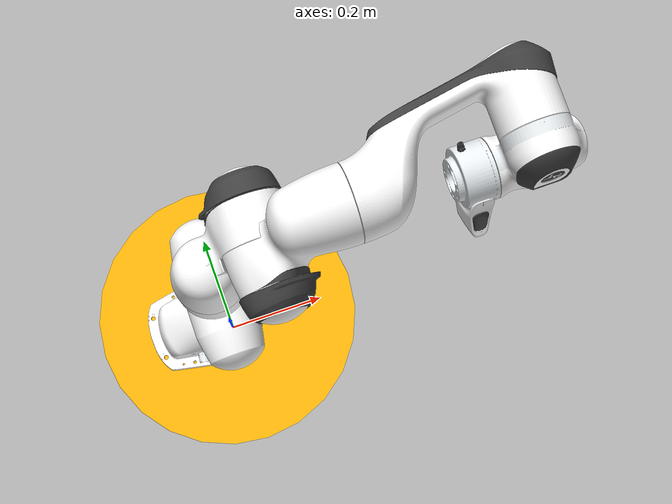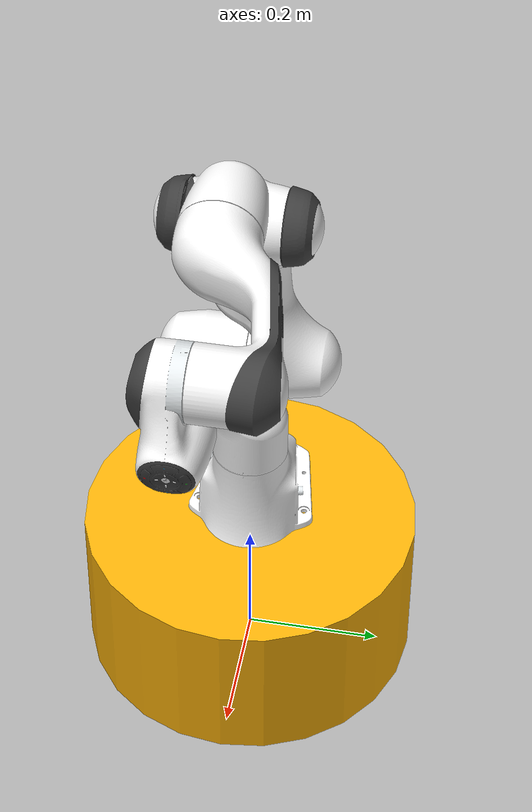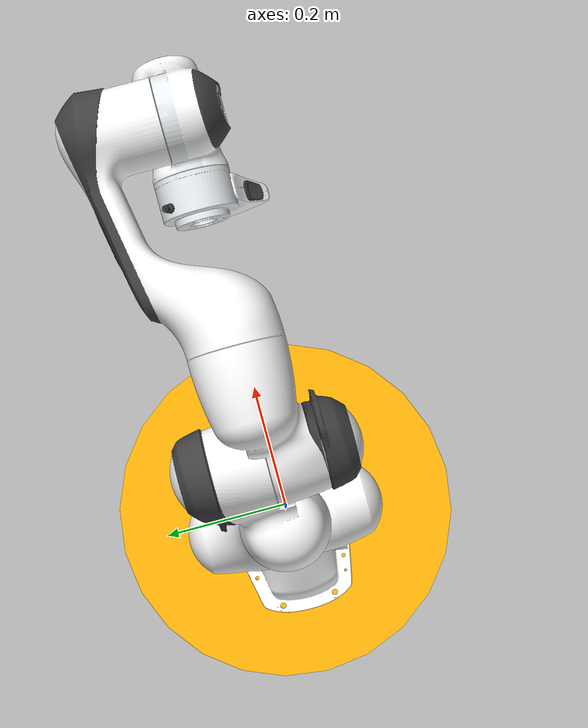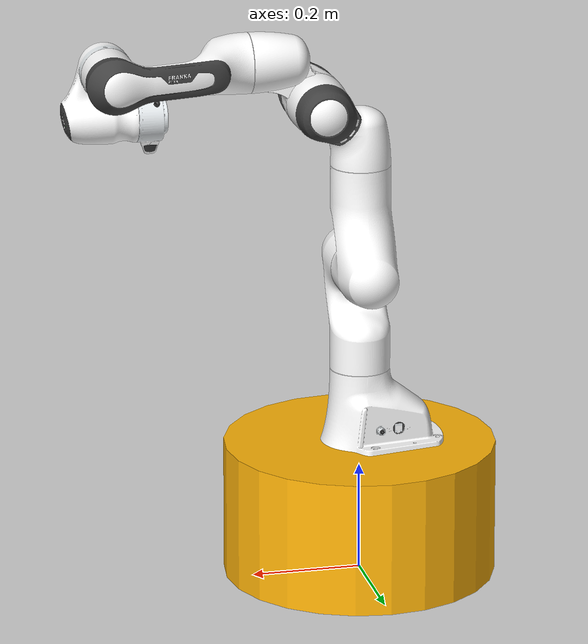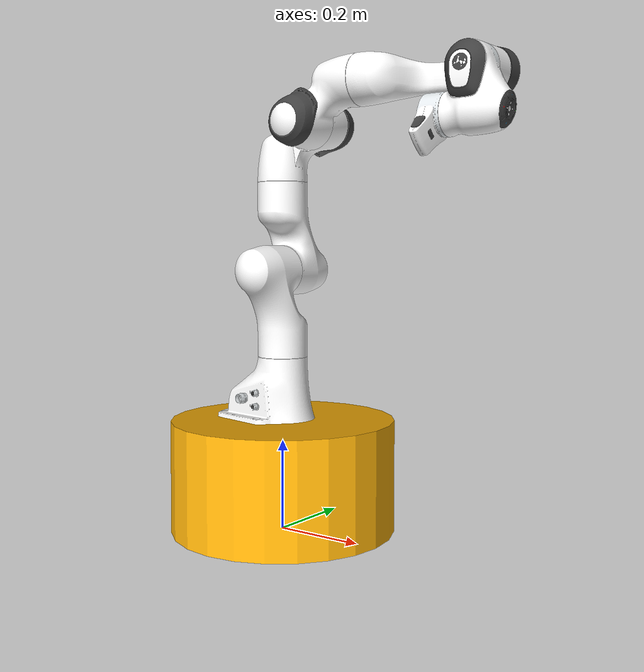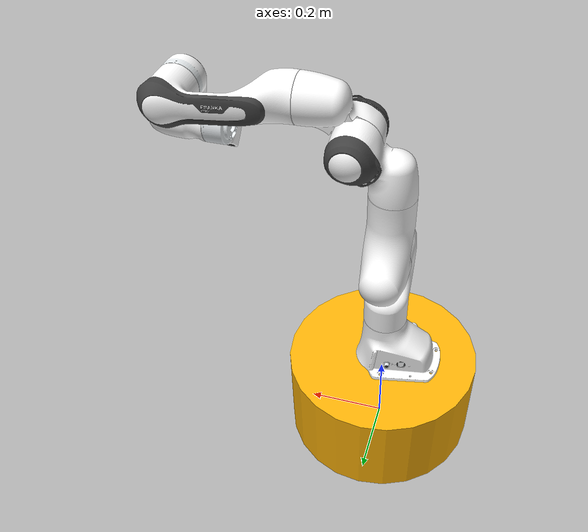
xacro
<?xml version="1.0" encoding="utf-8"?>
<robot xmlns:xacro="http://www.ros.org/wiki/xacro" name="panda">

  <!-- Include ros2_control definitions (must come before args) -->
  <xacro:include filename="$(find panda_description)/robots/ros2_control/panda_arm.ros2_control.xacro"/>

  <!-- Launch-time arguments ──────────────────────────────────────────────── -->
  <xacro:arg name="arm_id"                         default="panda"/>
  <xacro:arg name="hand"                           default="false"/>
  <xacro:arg name="robot_ip"                       default=""/>
  <xacro:arg name="use_fake_hardware"              default="false"/>
  <xacro:arg name="fake_sensor_commands"           default="false"/>
  <xacro:arg name="use_sim_time"                   default="false"/>
  <!-- path to your controllers YAML (if not overridden) -->
  <xacro:arg name="simulation_controllers_config_file"
             default="$(find panda_gazebo)/config/gazebo_panda_controllers.yaml"/>
  <!-- feed-forward gains -->
  <xacro:arg name="ff_vel"                          default="1.0"/>
  <xacro:arg name="ff_accel"                        default="0.2"/>

  <!-- World → base frame ─────────────────────────────────────────────────── -->
  <link name="world"/>
  <joint name="fixed_frame" type="fixed">
    <origin xyz="0 0 0.125" rpy="0 0 0"/>
    <parent link="world"/>
    <child  link="cylinder_base"/>
  </joint>

  <!-- Base pedestal ───────────────────────────────────────────────────────── -->
<link name="cylinder_base">
  <visual>
    <origin xyz="0 0 0" rpy="0 0 0"/>
    <geometry>
      <cylinder radius="0.25" length="0.25"/>
    </geometry>
    <material name="amber">
      <color rgba="0.996 0.702 0.031 1.0"/>
    </material>
  </visual>
  <collision>
    <origin xyz="0 0 0" rpy="0 0 0"/>
    <geometry>
      <cylinder radius="0.25" length="0.25"/>
    </geometry>
  </collision>
  <inertial>
    <mass value="10"/>
    <inertia
      ixx="0.3646" ixy="0" ixz="0"
      iyy="0.3646" iyz="0"
      izz="0.3125"/>
  </inertial>
</link>

  <!-- Panda arm kinematics & visuals ──────────────────────────────────────── -->
  <xacro:include filename="$(find panda_description)/robots/panda_arm.xacro"/>
  <xacro:panda_arm
      arm_id="$(arg arm_id)"
      connected_to="cylinder_base"
      xyz="0 0 0.125"
      safety_distance="0.03"
      use_sim_time="$(arg use_sim_time)"/>

  <!-- Optional hand (gripper) ────────────────────────────────────────────── -->
  <xacro:if value="$(arg hand)">
    <xacro:include filename="$(find panda_description)/robots/hand.xacro"/>
    <xacro:hand
        ns="$(arg arm_id)"
        connected_to="$(arg arm_id)_link8"
        rpy="0 0 ${-pi/4}"
        xyz="0 0 0"
        safety_distance="0.03"
        use_sim_time="$(arg use_sim_time)"
        simulation_controllers_config_file="$(arg simulation_controllers_config_file)"/>
  </xacro:if>

  <!-- Arm ros2_control + feed-forward instantiation ───────────────────────── -->
  <xacro:panda_arm_ros2_control
      ns="$(arg arm_id)"
      use_sim_time="$(arg use_sim_time)"
      load_gripper="$(arg hand)"
      simulation_controllers_config_file="$(arg simulation_controllers_config_file)"
      ff_vel="$(arg ff_vel)"
      ff_accel="$(arg ff_accel)"/>

  <!-- Gazebo joint-trajectory-controller plugin (if still needed) ─────────── -->
  <plugin filename="libgz-sim-joint-trajectory-controller-system.so"
          name="gz::sim::systems::JointTrajectoryController">
    <!-- list each of your 7 joints -->
    <joint_name>panda_joint1</joint_name>
    <joint_name>panda_joint2</joint_name>
    <joint_name>panda_joint3</joint_name>
    <joint_name>panda_joint4</joint_name>
    <joint_name>panda_joint5</joint_name>
    <joint_name>panda_joint6</joint_name>
    <joint_name>panda_joint7</joint_name>

    <!-- per-joint P gains (example values) -->
    <position_p_gain>100</position_p_gain>
    <position_p_gain>100</position_p_gain>
    <position_p_gain>100</position_p_gain>
    <position_p_gain>100</position_p_gain>
    <position_p_gain>100</position_p_gain>
    <position_p_gain>100</position_p_gain>
    <position_p_gain>100</position_p_gain>
  </plugin>

</robot>

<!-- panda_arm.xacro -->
<robot xmlns:xacro="http://www.ros.org/wiki/xacro" name="panda">
  <!-- safety_distance: Minimum safety distance in [m] by which the collision volumes are expanded
  and which is enforced during robot motions -->
  <!-- arm_id: Namespace of the panda arm. Serves to differentiate between arms in case of multiple
  instances. -->
  <!-- Load inertial properties. Property is implicitly passed to macros. -->
  <xacro:property name="inertial_config"
    value="$(find panda_description)/robots/common/inertial.yaml" />
  <xacro:property name="inertial" value="${xacro.load_yaml(inertial_config)}" />

  <!-- name:     Name of the robot link (without prefix)              -->
  <!-- inertial: Dictionary of inertia properties (see inertial.yaml) -->
  <xacro:macro name="inertial_props" params="name inertial:=^">
    <xacro:unless value="${name in inertial}">${xacro.warning('No inertia properties defined for: '
      + name)}</xacro:unless>
    <xacro:if value="${name in inertial}">
      <!-- Access inertia properties of link 'name' -->
      <xacro:property name="inertial" value="${inertial[name]}" lazy_eval="false" />
      <inertial>
        <origin rpy="${inertial.origin.rpy}" xyz="${inertial.origin.xyz}" />
        <mass value="${inertial.mass}" />
        <xacro:property name="I" value="${inertial.inertia}" />
        <inertia ixx="${I.xx}" ixy="${I.xy}" ixz="${I.xz}" iyy="${I.yy}" iyz="${I.yz}" izz="${I.zz}" />
      </inertial>
    </xacro:if>
  </xacro:macro>

  <xacro:macro name="panda_arm"
    params="arm_id:='panda' use_sim_time:='false' description_pkg:='panda_description' connected_to:='' xyz:='0 0 0' rpy:='0 0 0' safety_distance:=0">
    <xacro:unless value="${not connected_to}">
      <joint name="${arm_id}_joint_${connected_to}" type="fixed">
        <parent link="${connected_to}" />
        <child link="${arm_id}_link0" />
        <origin rpy="${rpy}" xyz="${xyz}" />
      </joint>
    </xacro:unless>

    <link name="${arm_id}_link0">
      <visual>
        <geometry>
          <mesh filename="file://$(find ${description_pkg})/meshes/visual/link0.dae" />
        </geometry>
      </visual>
      <collision>
         <geometry>
          <mesh filename="file://$(find ${description_pkg})/meshes/collision/link0.stl" />
        </geometry>
      </collision>
    </link>

    <link name="${arm_id}_link1">
      <visual>
        <geometry>
          <mesh filename="file://$(find ${description_pkg})/meshes/visual/link1.dae" />
        </geometry>
      </visual>
       <collision>
         <geometry>
          <mesh filename="file://$(find ${description_pkg})/meshes/collision/link1.stl" />
        </geometry>
      </collision>
      <xacro:if value="${use_sim_time}">
        <xacro:inertial_props name="link1" />
      </xacro:if>
    </link>

    <joint name="${arm_id}_joint1" type="revolute">
      <safety_controller k_position="100.0" k_velocity="10.0" soft_lower_limit="-2.8973"
        soft_upper_limit="2.8973" />
      <origin rpy="0 0 0" xyz="0 0 0.333" />
      <parent link="${arm_id}_link0" />
      <child link="${arm_id}_link1" />
      <axis xyz="0 0 1" />
      <limit effort="87" lower="-2.8973" upper="2.8973" velocity="2.1750" />
      <dynamics D="5.0" K="9000" damping="990.0" friction="5.1" mu_coulomb="0.0" mu_viscous="500.0"/>
    </joint>

    <link name="${arm_id}_link2">
      <visual>
        <geometry>
          <mesh filename="file://$(find ${description_pkg})/meshes/visual/link2.dae" />
        </geometry>
      </visual>
      <collision>
         <geometry>
          <mesh filename="file://$(find ${description_pkg})/meshes/collision/link2.stl" />
        </geometry>
      </collision>
      <xacro:if value="${use_sim_time}">
        <xacro:inertial_props name="link2" />
      </xacro:if>
    </link>

    <joint name="${arm_id}_joint2" type="revolute">
      <safety_controller k_position="100.0" k_velocity="10.0" soft_lower_limit="-1.7628"
        soft_upper_limit="1.7628" />
      <origin rpy="${-pi/2} 0 0" xyz="0 0 0" />
      <parent link="${arm_id}_link1" />
      <child link="${arm_id}_link2" />
      <axis xyz="0 0 1" />
      <limit effort="87" lower="-1.7628" upper="1.7628" velocity="2.1750" />
      <dynamics D="5.0" K="9000" damping="990.0" friction="5.1" mu_coulomb="0.0" mu_viscous="500.0" />
    </joint>

    <link name="${arm_id}_link3">
      <visual>
        <geometry>
          <mesh filename="file://$(find ${description_pkg})/meshes/visual/link3.dae" />
        </geometry>
      </visual>
      <collision>
         <geometry>
          <mesh filename="file://$(find ${description_pkg})/meshes/collision/link3.stl" />
        </geometry>
      </collision>
      <xacro:if value="${use_sim_time}">
        <xacro:inertial_props name="link3" />
      </xacro:if>
    </link>

    <joint name="${arm_id}_joint3" type="revolute">
      <safety_controller k_position="100.0" k_velocity="10.0" soft_lower_limit="-2.8973"
        soft_upper_limit="2.8973" />
      <origin rpy="${pi/2} 0 0" xyz="0 -0.316 0" />
      <parent link="${arm_id}_link2" />
      <child link="${arm_id}_link3" />
      <axis xyz="0 0 1" />
      <limit effort="87" lower="-2.8973" upper="2.8973" velocity="2.1750" />
      <dynamics D="5.0" K="9000" damping="990.0" friction="5.1" mu_coulomb="0.0" mu_viscous="500.0" />
    </joint>

    <link name="${arm_id}_link4">
      <visual>
        <geometry>
          <mesh filename="file://$(find ${description_pkg})/meshes/visual/link4.dae" />
        </geometry>
      </visual>
      <collision>
         <geometry>
          <mesh filename="file://$(find ${description_pkg})/meshes/collision/link4.stl" />
        </geometry>
      </collision>
      <xacro:if value="${use_sim_time}">
        <xacro:inertial_props name="link4" />
      </xacro:if>
    </link>

    <joint name="${arm_id}_joint4" type="revolute">
      <safety_controller k_position="100.0" k_velocity="10.0" soft_lower_limit="-3.0718"
        soft_upper_limit="-0.0698" />
      <origin rpy="${pi/2} 0 0" xyz="0.0825 0 0" />
      <parent link="${arm_id}_link3" />
      <child link="${arm_id}_link4" />
      <axis xyz="0 0 1" />
      <limit effort="87" lower="-3.0718" upper="-0.0698" velocity="2.1750" />
      <dynamics D="5.0" K="9000" damping="990.0" friction="5.1" mu_coulomb="0.0" mu_viscous="500.0" />
    </joint>

    <link name="${arm_id}_link5">
      <visual>
        <geometry>
          <mesh filename="file://$(find ${description_pkg})/meshes/visual/link5.dae" />
        </geometry>
      </visual>
      <collision>
         <geometry>
          <mesh filename="file://$(find ${description_pkg})/meshes/collision/link5.stl" />
        </geometry>
      </collision>
      <xacro:if value="${use_sim_time}">
        <xacro:inertial_props name="link5" />
      </xacro:if>
    </link>

    <joint name="${arm_id}_joint5" type="revolute">
      <safety_controller k_position="100.0" k_velocity="10.0" soft_lower_limit="-2.8973"
        soft_upper_limit="2.8973" />
      <origin rpy="${-pi/2} 0 0" xyz="-0.0825 0.384 0" />
      <parent link="${arm_id}_link4" />
      <child link="${arm_id}_link5" />
      <axis xyz="0 0 1" />
      <limit effort="12" lower="-2.8973" upper="2.8973" velocity="2.6100" />
      <dynamics D="5.0" K="9000" damping="990.0" friction="5.1" mu_coulomb="0.0" mu_viscous="500.0" />
    </joint>

    <link name="${arm_id}_link6">
      <visual>
        <geometry>
          <mesh filename="file://$(find ${description_pkg})/meshes/visual/link6.dae" />
        </geometry>
      </visual>
      <collision>
         <geometry>
          <mesh filename="file://$(find ${description_pkg})/meshes/collision/link6.stl" />
        </geometry>
      </collision>
      <xacro:if value="${use_sim_time}">
        <xacro:inertial_props name="link6" />
      </xacro:if>
    </link>

    <joint name="${arm_id}_joint6" type="revolute">
      <safety_controller k_position="100.0" k_velocity="10.0" soft_lower_limit="-0.0175"
        soft_upper_limit="3.7525" />
      <origin rpy="${pi/2} 0 0" xyz="0 0 0" />
      <parent link="${arm_id}_link5" />
      <child link="${arm_id}_link6" />
      <axis xyz="0 0 1" />
      <limit effort="12" lower="-0.0175" upper="3.7525" velocity="2.6100" />
      <dynamics D="5.0" K="9000" damping="990.0" friction="5.1" mu_coulomb="0.0" mu_viscous="500.0" />
    </joint>

    <link name="${arm_id}_link7">
      <visual>
        <geometry>
          <mesh filename="file://$(find ${description_pkg})/meshes/visual/link7.dae" />
        </geometry>
      </visual>
      <collision>
         <geometry>
          <mesh filename="file://$(find ${description_pkg})/meshes/collision/link7.stl" />
        </geometry>
      </collision>
      <xacro:if value="${use_sim_time}">
        <xacro:inertial_props name="link7" />
      </xacro:if>
    </link>

    <joint name="${arm_id}_joint7" type="revolute">
      <safety_controller k_position="100.0" k_velocity="10.0" soft_lower_limit="-2.8973"
        soft_upper_limit="2.8973" />
      <origin rpy="${pi/2} 0 0" xyz="0.088 0 0" />
      <parent link="${arm_id}_link6" />
      <child link="${arm_id}_link7" />
      <axis xyz="0 0 1" />
      <limit effort="12" lower="-2.8973" upper="2.8973" velocity="2.6100" />
      <dynamics D="5.0" K="9000" damping="990.0" friction="5.1" mu_coulomb="0.0" mu_viscous="500.0" />
    </joint>

    <link name="${arm_id}_link8">

    </link>

    <joint name="${arm_id}_joint8" type="fixed">
      <origin rpy="0 0 0" xyz="0 0 0.107" />
      <parent link="${arm_id}_link7" />
      <child link="${arm_id}_link8" />
    </joint>

  </xacro:macro>
</robot>
